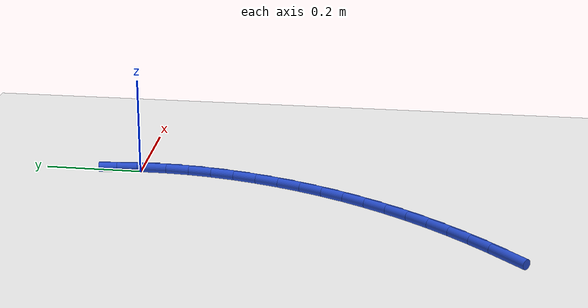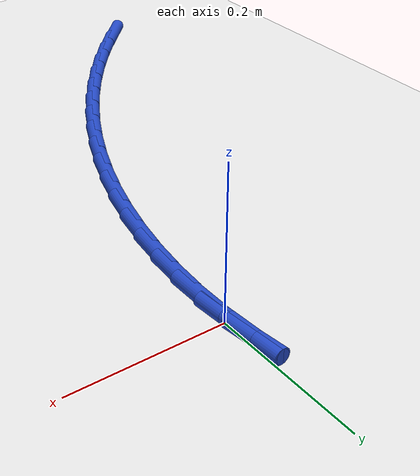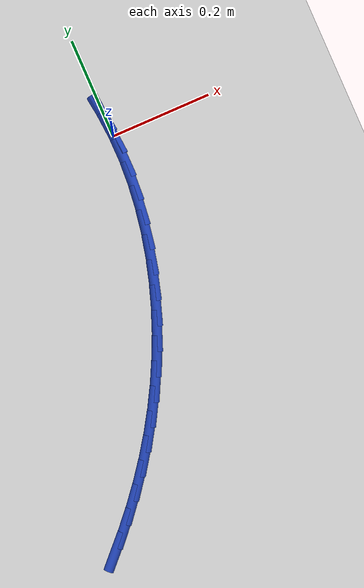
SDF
<sdf version="1.6">
 <world name="default">
  <model name="ground_plane">
   <static>1</static>
   <link name="link">
    <collision name="collision">
     <geometry><plane><normal>0 0 1</normal><size>100 100</size></plane></geometry>
     <surface><friction><ode><mu>100</mu><mu2>50</mu2></ode></friction></surface>
    </collision>
    <visual name="visual">
     <cast_shadows>0</cast_shadows>
     <geometry><plane><normal>0 0 1</normal><size>100 100</size></plane></geometry>
     <material>
      <script><uri>file://media/materials/scripts/gazebo.material</uri><name>Gazebo/WhiteGlow</name></script>
     </material>
    </visual>
   </link>
  </model>
  <model name="line">
   <link name="link_0">
    <pose>2.949029909160572e-17 1.3877787807814457e-17 0.01 0 1.57 -1.4985770990119722</pose>
    <collision name="collision">
     <geometry><cylinder><radius>0.01</radius><length>0.08</length></cylinder></geometry>
    </collision>
    <visual name="visual">
     <material>
      <script><name>Gazebo/Blue</name><uri>file://media/materials/scripts/gazebo.material</uri></script>
     </material>
     <geometry><cylinder><radius>0.01</radius><length>0.08</length></cylinder></geometry>
    </visual>
   </link>
   <link name="link_1">
    <pose>-0.0033918439803330576 0.0468842603277983 0.01 0 1.57 -1.4418258776042745</pose>
    <collision name="collision">
     <geometry><cylinder><radius>0.01</radius><length>0.08</length></cylinder></geometry>
    </collision>
    <visual name="visual">
     <material>
      <script><name>Gazebo/Blue</name><uri>file://media/materials/scripts/gazebo.material</uri></script>
     </material>
     <geometry><cylinder><radius>0.01</radius><length>0.08</length></cylinder></geometry>
    </visual>
   </link>
   <link name="link_153">
    <pose>-0.31783235313643066 -0.7347153893317874 0.01 0 1.57 0.80722864820709</pose>
    <collision name="collision">
     <geometry><cylinder><radius>0.01</radius><length>0.08</length></cylinder></geometry>
    </collision>
    <visual name="visual">
     <material>
      <script><name>Gazebo/Blue</name><uri>file://media/materials/scripts/gazebo.material</uri></script>
     </material>
     <geometry><cylinder><radius>0.01</radius><length>0.08</length></cylinder></geometry>
    </visual>
   </link>
   <link name="link_154">
    <pose>-0.28456352329239687 -0.6999613513625051 0.01 0 1.57 0.8446204090959</pose>
    <collision name="collision">
     <geometry><cylinder><radius>0.01</radius><length>0.08</length></cylinder></geometry>
    </collision>
    <visual name="visual">
     <material>
      <script><name>Gazebo/Blue</name><uri>file://media/materials/scripts/gazebo.material</uri></script>
     </material>
     <geometry><cylinder><radius>0.01</radius><length>0.08</length></cylinder></geometry>
    </visual>
   </link>
   <link name="link_155">
    <pose>-0.2526196835412371 -0.6639907575983964 0.01 0 1.57 0.8846010775348531</pose>
    <collision name="collision">
     <geometry><cylinder><radius>0.01</radius><length>0.08</length></cylinder></geometry>
    </collision>
    <visual name="visual">
     <material>
      <script><name>Gazebo/Blue</name><uri>file://media/materials/scripts/gazebo.material</uri></script>
     </material>
     <geometry><cylinder><radius>0.01</radius><length>0.08</length></cylinder></geometry>
    </visual>
   </link>
   <link name="link_156">
    <pose>-0.22211638883326085 -0.6267443614929428 0.01 0 1.57 0.9257355593941252</pose>
    <collision name="collision">
     <geometry><cylinder><radius>0.01</radius><length>0.08</length></cylinder></geometry>
    </collision>
    <visual name="visual">
     <material>
      <script><name>Gazebo/Blue</name><uri>file://media/materials/scripts/gazebo.material</uri></script>
     </material>
     <geometry><cylinder><radius>0.01</radius><length>0.08</length></cylinder></geometry>
    </visual>
   </link>
   <link name="link_157">
    <pose>-0.1931446046312941 -0.5882405724391804 0.01 0 1.57 0.967917365056995</pose>
    <collision name="collision">
     <geometry><cylinder><radius>0.01</radius><length>0.08</length></cylinder></geometry>
    </collision>
    <visual name="visual">
     <material>
      <script><name>Gazebo/Blue</name><uri>file://media/materials/scripts/gazebo.material</uri></script>
     </material>
     <geometry><cylinder><radius>0.01</radius><length>0.08</length></cylinder></geometry>
    </visual>
   </link>
   <link name="link_158">
    <pose>-0.16579262219225113 -0.548506245226688 0.01 0 1.57 1.0111852965496755</pose>
    <collision name="collision">
     <geometry><cylinder><radius>0.01</radius><length>0.08</length></cylinder></geometry>
    </collision>
    <visual name="visual">
     <material>
      <script><name>Gazebo/Blue</name><uri>file://media/materials/scripts/gazebo.material</uri></script>
     </material>
     <geometry><cylinder><radius>0.01</radius><length>0.08</length></cylinder></geometry>
    </visual>
   </link>
   <link name="link_159">
    <pose>-0.1401487327730478 -0.507568234645046 0.01 0 1.57 1.0555631719153231</pose>
    <collision name="collision">
     <geometry><cylinder><radius>0.01</radius><length>0.08</length></cylinder></geometry>
    </collision>
    <visual name="visual">
     <material>
      <script><name>Gazebo/Blue</name><uri>file://media/materials/scripts/gazebo.material</uri></script>
     </material>
     <geometry><cylinder><radius>0.01</radius><length>0.08</length></cylinder></geometry>
    </visual>
   </link>
   <link name="link_160">
    <pose>-0.11630122763059839 -0.46545339548383313 0.01 0 1.57 1.1010576205796823</pose>
    <collision name="collision">
     <geometry><cylinder><radius>0.01</radius><length>0.08</length></cylinder></geometry>
    </collision>
    <visual name="visual">
     <material>
      <script><name>Gazebo/Blue</name><uri>file://media/materials/scripts/gazebo.material</uri></script>
     </material>
     <geometry><cylinder><radius>0.01</radius><length>0.08</length></cylinder></geometry>
    </visual>
   </link>
   <link name="link_161">
    <pose>-0.09433839802181779 -0.4221885825326289 0.01 0 1.57 1.1476559174465253</pose>
    <collision name="collision">
     <geometry><cylinder><radius>0.01</radius><length>0.08</length></cylinder></geometry>
    </collision>
    <visual name="visual">
     <material>
      <script><name>Gazebo/Blue</name><uri>file://media/materials/scripts/gazebo.material</uri></script>
     </material>
     <geometry><cylinder><radius>0.01</radius><length>0.08</length></cylinder></geometry>
    </visual>
   </link>
   <link name="link_162">
    <pose>-0.07434853520362075 -0.37780065058101214 0.01 0 1.57 1.195304759169248</pose>
    <collision name="collision">
     <geometry><cylinder><radius>0.01</radius><length>0.08</length></cylinder></geometry>
    </collision>
    <visual name="visual">
     <material>
      <script><name>Gazebo/Blue</name><uri>file://media/materials/scripts/gazebo.material</uri></script>
     </material>
     <geometry><cylinder><radius>0.01</radius><length>0.08</length></cylinder></geometry>
    </visual>
   </link>
   <link name="link_163">
    <pose>-0.05642218412446661 -0.33232473751407504 0.01 0 1.57 1.2438319634742006</pose>
    <collision name="collision">
     <geometry><cylinder><radius>0.01</radius><length>0.08</length></cylinder></geometry>
    </collision>
    <visual name="visual">
     <material>
      <script><name>Gazebo/Blue</name><uri>file://media/materials/scripts/gazebo.material</uri></script>
     </material>
     <geometry><cylinder><radius>0.01</radius><length>0.08</length></cylinder></geometry>
    </visual>
   </link>
   <link name="link_164">
    <pose>-0.040679549502850014 -0.2859049911249756 0.01 0 1.57 1.2935070378192477</pose>
    <collision name="collision">
     <geometry><cylinder><radius>0.01</radius><length>0.08</length></cylinder></geometry>
    </collision>
    <visual name="visual">
     <material>
      <script><name>Gazebo/Blue</name><uri>file://media/materials/scripts/gazebo.material</uri></script>
     </material>
     <geometry><cylinder><radius>0.01</radius><length>0.08</length></cylinder></geometry>
    </visual>
   </link>
   <link name="link_165">
    <pose>-0.02726175408974679 -0.23876244020746765 0.01 0 1.57 1.3448561138983515</pose>
    <collision name="collision">
     <geometry><cylinder><radius>0.01</radius><length>0.08</length></cylinder></geometry>
    </collision>
    <visual name="visual">
     <material>
      <script><name>Gazebo/Blue</name><uri>file://media/materials/scripts/gazebo.material</uri></script>
     </material>
     <geometry><cylinder><radius>0.01</radius><length>0.08</length></cylinder></geometry>
    </visual>
   </link>
   <link name="link_166">
    <pose>-0.016310358880816018 -0.19111972425601403 0.01 0 1.57 1.3984135187014013</pose>
    <collision name="collision">
     <geometry><cylinder><radius>0.01</radius><length>0.08</length></cylinder></geometry>
    </collision>
    <visual name="visual">
     <material>
      <script><name>Gazebo/Blue</name><uri>file://media/materials/scripts/gazebo.material</uri></script>
     </material>
     <geometry><cylinder><radius>0.01</radius><length>0.08</length></cylinder></geometry>
    </visual>
   </link>
   <link name="link_167">
    <pose>-0.007966924871716845 -0.14319948276507777 0.01 0 1.57 1.4547202262630747</pose>
    <collision name="collision">
     <geometry><cylinder><radius>0.01</radius><length>0.08</length></cylinder></geometry>
    </collision>
    <visual name="visual">
     <material>
      <script><name>Gazebo/Blue</name><uri>file://media/materials/scripts/gazebo.material</uri></script>
     </material>
     <geometry><cylinder><radius>0.01</radius><length>0.08</length></cylinder></geometry>
    </visual>
   </link>
   <link name="link_168">
    <pose>-0.0023730130581082797 -0.09522435522912065 0.01 0 1.57 1.5143206365417463</pose>
    <collision name="collision">
     <geometry><cylinder><radius>0.01</radius><length>0.08</length></cylinder></geometry>
    </collision>
    <visual name="visual">
     <material>
      <script><name>Gazebo/Blue</name><uri>file://media/materials/scripts/gazebo.material</uri></script>
     </material>
     <geometry><cylinder><radius>0.01</radius><length>0.08</length></cylinder></geometry>
    </visual>
   </link>
   <link name="link_169">
    <pose>0.00032981556435034143 -0.04741698114260735 0.01 0 1.57 -1.5638407965686796</pose>
    <collision name="collision">
     <geometry><cylinder><radius>0.01</radius><length>0.08</length></cylinder></geometry>
    </collision>
    <visual name="visual">
     <material>
      <script><name>Gazebo/Blue</name><uri>file://media/materials/scripts/gazebo.material</uri></script>
     </material>
     <geometry><cylinder><radius>0.01</radius><length>0.08</length></cylinder></geometry>
    </visual>
   </link>
   <link name="link_170">
    <pose>3.642919299551295e-17 2.0122792321330962e-16 0.01 0 1.57 -1.496069809002335</pose>
    <collision name="collision">
     <geometry><cylinder><radius>0.01</radius><length>0.08</length></cylinder></geometry>
    </collision>
    <visual name="visual">
     <material>
      <script><name>Gazebo/Blue</name><uri>file://media/materials/scripts/gazebo.material</uri></script>
     </material>
     <geometry><cylinder><radius>0.01</radius><length>0.08</length></cylinder></geometry>
    </visual>
   </link>
   <link name="link_171">
    <pose>-0.003504020746818312 0.046803948704239144 0.01 0 1.57 -1.4960698090023354</pose>
    <collision name="collision">
     <geometry><cylinder><radius>0.01</radius><length>0.08</length></cylinder></geometry>
    </collision>
    <visual name="visual">
     <material>
      <script><name>Gazebo/Blue</name><uri>file://media/materials/scripts/gazebo.material</uri></script>
     </material>
     <geometry><cylinder><radius>0.01</radius><length>0.08</length></cylinder></geometry>
    </visual>
   </link>
  </model>
 </world>
</sdf>
